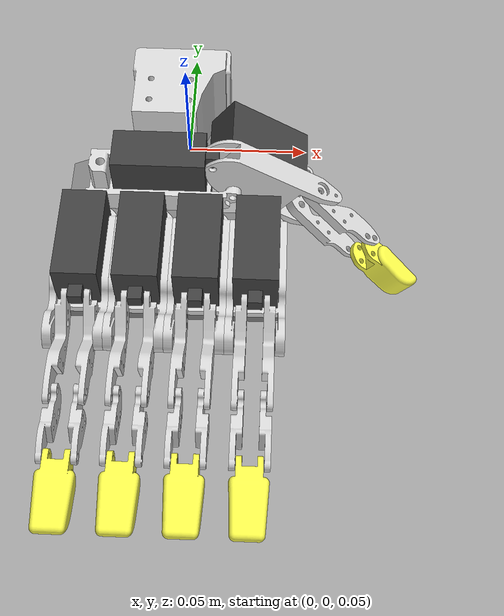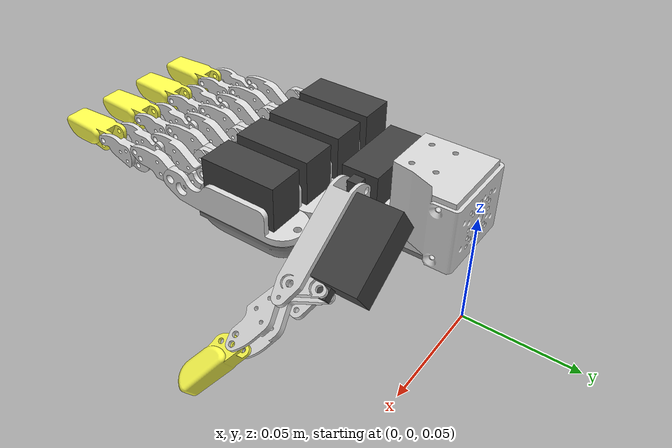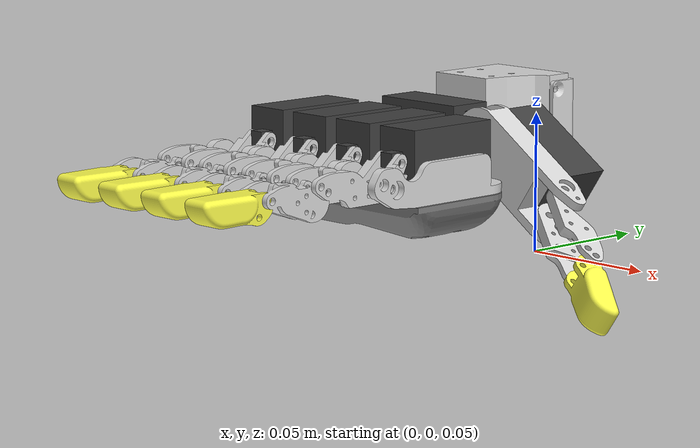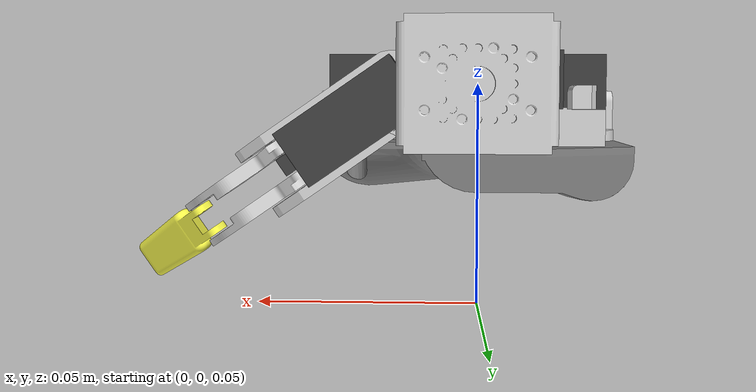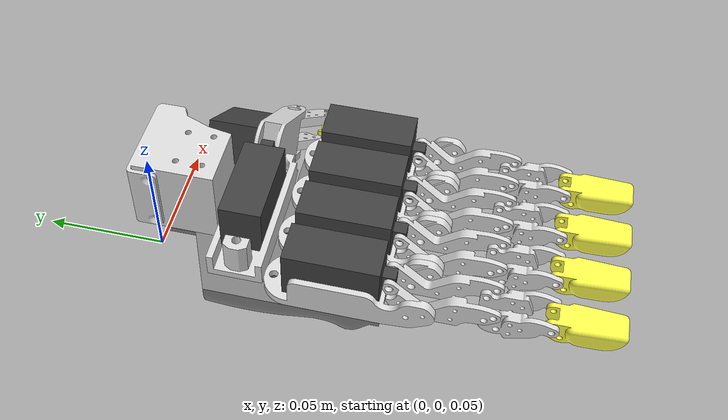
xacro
<?xml version="1.0"?>
<robot xmlns:xacro="http://www.ros.org/wiki/xacro" name="hj_hand_world">
      <!--
      Autor: Hyeonjun Park
      2019.07.17
      -->
      <link name="world" />

      <xacro:include filename="$(find hri_hand_control)/urdf/hj_hand.urdf.xacro" />
      <hj_hand parent="world">
            <origin xyz="0.0 0.0 0.1" rpy="${pi/2} ${pi} 0 "/>
      </hj_hand>

</robot>

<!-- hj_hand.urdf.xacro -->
<robot xmlns:xacro="http://www.ros.org/wiki/xacro" name="hj_hand">
<xacro:macro name="hj_hand" params="parent *origin">
      <!--
      Autor: Hyeonjun Park
      2019.07.17
      -->
      <xacro:include filename="$(find hri_hand_control)/urdf/hj_hand_transmission.xacro" />
      <xacro:include filename="$(find hri_hand_control)/urdf/hj_hand_gazebo.xacro" />

      <xacro:property name="motor_x" value="0.016" />
      <xacro:property name="motor_y" value="0.035" />
      <xacro:property name="motor_z" value="0.02" />
      <xacro:property name="pris_x" value="0.005" />
      <xacro:property name="pris_y" value="0.005" />
      <xacro:property name="pris_z" value="0.025" />

      <xacro:property name="knucle_mass" value="0.010" />
      <xacro:property name="MCP_mass" value="0.0125" />
      <xacro:property name="PIP_mass" value="0.0125" />
      <xacro:property name="DIP_mass" value="0.0025" />
      <xacro:property name="motor_mass" value="0.015" />

      <xacro:property name="motor_joint_x" value="0.0" />
      <xacro:property name="motor_joint_y" value="-0.0145" />
      <xacro:property name="motor_joint_z" value="0.006" />

      <xacro:property name="eef_offset_z" value="0.025725" />
      <xacro:property name="motor_max_upper" value="0.0103" /> <!--joint origin-->

<!--****************WRIST PLATE************************* -->
      <link name="wrist_plate">
            <visual>
                  <geometry>
                        <mesh filename="package://hri_hand_control/urdf/mesh/F03_AL_link_hand_wrist_part.stl" scale="0.001 0.001 0.001"/>
                  </geometry>
                  <origin xyz = "0.0 0.0 0.0" rpy = "1.57 0.0 0.0"/>
                  <material name="white">
                        <color rgba="0.85 0.85 0.85 1"/>
                  </material>
            </visual>
            <collision>
                  <geometry>
                        <mesh filename="package://hri_hand_control/urdf/mesh/F03_AL_link_hand_wrist_part.stl" scale="0.001 0.001 0.001"/>
                  </geometry>
                  <origin xyz = "0.0 0.0 0.0" rpy = "1.57 0.0 0.0"/>
            </collision>
      </link>
      <joint name="wrist_plate_joint" type="fixed">
            <xacro:insert_block name="origin" />
            <parent link="${parent}"/>
            <child link="wrist_plate"/>
            <limit lower="0.0" upper="0.0" effort="0.0" velocity="0.0"/>
      </joint>

      <!--**************** hand palm*************************-->
      <xacro:property name="hand_palm_x" value="0.0" />
      <xacro:property name="hand_palm_y" value="0.0162" />
      <xacro:property name="hand_palm_z" value="0.030" />
      <xacro:property name="hand_palm_r" value="3.14" />
      <xacro:property name="hand_palm_p" value="4.71" />
      <xacro:property name="hand_palm_yaw" value="0.0" />

      <link name="hand_palm">
            <visual>
                  <geometry>
                  <mesh filename="package://hri_hand_control/urdf/mesh/F03_AL_palm.stl" scale="0.001 0.001 0.001"/>
                  </geometry>
                  <origin xyz = "${hand_palm_x} ${hand_palm_y} ${hand_palm_z}" rpy = "${hand_palm_r} ${hand_palm_p} ${hand_palm_yaw}"/>
                  <material name="lightgrey">
                  <color rgba="0.5 0.5 0.5 1.0"/>
                  </material>
            </visual>
            <collision>
                  <geometry>
                  <mesh filename="package://hri_hand_control/urdf/mesh/F03_AL_palm.stl" scale="0.001 0.001 0.001"/>
                  </geometry>
                  <origin xyz = "${hand_palm_x} ${hand_palm_y} ${hand_palm_z}" rpy = "${hand_palm_r} ${hand_palm_p} ${hand_palm_yaw}"/>
            </collision>
            <inertial>
                  <mass value="0.09"/>
                  <inertia ixx="1.0e-03" ixy="0.0" ixz="0.0"
               iyy="1.0e-03" iyz="0.0"
               izz="1.0e-03" />
            </inertial>
      </link>

      <joint name="hand_wrist_plate_to_hand_palm" type="fixed">
            <parent link="wrist_plate"/>
            <child link="hand_palm"/>
            <origin xyz="0 0 .026"/>
      </joint>
      <!--****************4 fingers*************************-->

      <xacro:property name="knuckle_4finger_x" value="-0.0313" /> <!--joint origin-->
      <xacro:property name="knuckle_4finger_y" value="0.0160" />
      <xacro:property name="knuckle_4finger_z" value="0.0295" />

      <xacro:property name="knuckle_roll" value="0.0" />        <!--link orientation -->
      <xacro:property name="knuckle_pitch" value="-1.57" />
      <xacro:property name="knuckle_yaw" value="-3.14" />

      <link name="knuckle_index">
      <visual>
            <geometry>
            <mesh filename="package://hri_hand_control/urdf/mesh/F03_Finger_base.stl" scale="0.001 0.001 0.001"/>
            </geometry>
            <origin xyz = "0.0 0.0 0.0" rpy = "${knuckle_roll} ${knuckle_pitch} ${knuckle_yaw}"/>
            <material name="white">
            </material>
      </visual>
      <collision>
            <geometry>
            <mesh filename="package://hri_hand_control/urdf/mesh/F03_Finger_base.stl" scale="0.001 0.001 0.001"/>
            </geometry>
            <origin xyz = "0.0 0.0 0.0" rpy = "${knuckle_roll} ${knuckle_pitch} ${knuckle_yaw}"/>
      </collision>
      <inertial>
            <mass value="${knucle_mass}"/>
            <inertia ixx="1.0e-03" ixy="0.0" ixz="0.0"
               iyy="1.0e-03" iyz="0.0"
               izz="1.0e-03" />
      </inertial>
      </link>
      <joint name="knuckle_index_joint" type="fixed">
      <parent link="hand_palm"/>
      <child link="knuckle_index"/>
      <origin xyz ="${knuckle_4finger_x}
                        ${knuckle_4finger_y}
                        ${knuckle_4finger_z}"/>
      </joint>

      <link name="knuckle_middle">
      <visual>
            <geometry>
            <mesh filename="package://hri_hand_control/urdf/mesh/F03_Finger_base.stl" scale="0.001 0.001 0.001"/>
            </geometry>
            <origin xyz = "0.0 0.0 0.0" rpy = "${knuckle_roll} ${knuckle_pitch} ${knuckle_yaw}"/>
            <material name="white">
            </material>
      </visual>
      <collision>
            <geometry>
            <mesh filename="package://hri_hand_control/urdf/mesh/F03_Finger_base.stl" scale="0.001 0.001 0.001"/>
            </geometry>
            <origin xyz = "0.0 0.0 0.0" rpy = "${knuckle_roll} ${knuckle_pitch} ${knuckle_yaw}"/>
      </collision>
      <inertial>
            <mass value="${knucle_mass}"/>
            <inertia ixx="1.0e-03" ixy="0.0" ixz="0.0"
               iyy="1.0e-03" iyz="0.0"
               izz="1.0e-03" />

      </inertial>
      </link>
            <joint name="knuckle_middle_joint" type="fixed">
            <parent link="hand_palm"/>
            <child link="knuckle_middle"/>
            <origin xyz ="${knuckle_4finger_x + 0.0210}
                              ${knuckle_4finger_y}
                              ${knuckle_4finger_z}"/>
      </joint>

      <link name="knuckle_ring">
            <visual>
                  <geometry>
                  <mesh filename="package://hri_hand_control/urdf/mesh/F03_Finger_base.stl" scale="0.001 0.001 0.001"/>
                  </geometry>
                  <origin xyz = "0.0 0.0 0.0" rpy = "${knuckle_roll} ${knuckle_pitch} ${knuckle_yaw}"/>
                  <material name="white">
                  </material>
            </visual>
            <collision>
                  <geometry>
                  <mesh filename="package://hri_hand_control/urdf/mesh/F03_Finger_base.stl" scale="0.001 0.001 0.001"/>
                  </geometry>
                  <origin xyz = "0.0 0.0 0.0" rpy = "${knuckle_roll} ${knuckle_pitch} ${knuckle_yaw}"/>
            </collision>
            <inertial>
                  <mass value="${knucle_mass}"/>
                  <inertia ixx="1.0e-03" ixy="0.0" ixz="0.0"
               iyy="1.0e-03" iyz="0.0"
               izz="1.0e-03" />

            </inertial>
      </link>
            <joint name="knuckle_ring_joint" type="fixed">
                  <parent link="hand_palm"/>
                  <child link="knuckle_ring"/>
                  <origin xyz ="${knuckle_4finger_x + 0.0420}
                                    ${knuckle_4finger_y}
                                    ${knuckle_4finger_z}"/>
            </joint>

      <link name="knuckle_little">
            <visual>
                  <geometry>
                  <mesh filename="package://hri_hand_control/urdf/mesh/F03_Finger_base.stl" scale="0.001 0.001 0.001"/>
                  </geometry>
                  <origin xyz = "0.0 0.0 0.0" rpy = "${knuckle_roll} ${knuckle_pitch} ${knuckle_yaw}"/>
                  <material name="white">
                  </material>
            </visual>
            <collision>
                  <geometry>
                  <mesh filename="package://hri_hand_control/urdf/mesh/F03_Finger_base.stl" scale="0.001 0.001 0.001"/>
                  </geometry>
                  <origin xyz = "0.0 0.0 0.0" rpy = "${knuckle_roll} ${knuckle_pitch} ${knuckle_yaw}"/>
            </collision>
            <inertial>
                  <mass value="${knucle_mass}"/>
                  <inertia ixx="1.0e-03" ixy="0.0" ixz="0.0"
               iyy="1.0e-03" iyz="0.0"
               izz="1.0e-03" />

            </inertial>
      </link>
      <joint name="knuckle_little_joint" type="fixed">
            <parent link="hand_palm"/>
            <child link="knuckle_little"/>
            <origin xyz ="${knuckle_4finger_x + 0.0630}
                              ${knuckle_4finger_y}
                              ${knuckle_4finger_z}"/>
      </joint>

      <!--****************Thumb part*************************-->
      <xacro:property name="knuckle_thumb_x" value="0.0345" /> <!--joint origin-->
      <xacro:property name="knuckle_thumb_y" value="0.0162" />
      <xacro:property name="knuckle_thumb_z" value="0.0186" />

      <xacro:property name="thumb_joint_joint_x" value="-0.0558" /> <!--joint origin-->
      <xacro:property name="thumb_joint_joint_y" value="-0.00675" />
      <xacro:property name="thumb_joint_joint_z" value="-0.0" />

      <xacro:property name="thumb_x" value="0.00" /> <!--link offset-->
      <xacro:property name="thumb_y" value="0" />
      <xacro:property name="thumb_z" value="-0.005" />
      <xacro:property name="thumb_roll" value="0.0" /> <!--joint offset-->
      <xacro:property name="thumb_pitch" value="0" />
      <xacro:property name="thumb_yaw" value="3.14" />

      <xacro:property name="thumb_link_MCP_x" value="0.00955" /> <!--link offset-->
      <xacro:property name="thumb_link_MCP_y" value="0.0" />
      <xacro:property name="thumb_link_MCP_z" value="0.00415" />
      <xacro:property name="thumb_link_DIP_x" value="0.00255" /> <!--link offset-->
      <xacro:property name="thumb_link_DIP_y" value="0.00" />
      <xacro:property name="thumb_link_DIP_z" value="0.00726" />

      <xacro:property name="thumb_finger_roll" value="-1.57" /> <!--link offset-->
      <xacro:property name="thumb_finger_pitch" value="0" />
      <xacro:property name="thumb_finger_yaw" value="3.14" />

      <xacro:property name="thumb_joint_MCP_x" value="-0.031" /> <!--joint origin-->
      <xacro:property name="thumb_joint_MCP_y" value="-0.0055" />
      <xacro:property name="thumb_joint_MCP_z" value="-0.000" />
      <xacro:property name="thumb_joint_DIP_x" value="-0.0298" /> <!--joint origin-->
      <xacro:property name="thumb_joint_DIP_y" value="-0.00" />
      <xacro:property name="thumb_joint_DIP_z" value="-0.0042" />

      <link name="knuckle_thumb">
            <visual>
                  <geometry>
                  <mesh filename="package://hri_hand_control/urdf/mesh/F03_Thumb_base.stl" scale="0.001 0.001 0.001"/>
                  </geometry>
                  <origin xyz = "0.0 0.0 0.0" rpy = "${knuckle_roll} 0.0 ${knuckle_yaw}"/>
                  <material name="white">
                  </material>
            </visual>
            <collision>
                  <geometry>
                  <mesh filename="package://hri_hand_control/urdf/mesh/F03_Thumb_base.stl" scale="0.001 0.001 0.001"/>
                  </geometry>
                  <origin xyz = "0.0 0.0 0.0" rpy = "${knuckle_roll} 0.0 ${knuckle_yaw}"/>
            </collision>
            <inertial>
                  <mass value="${knucle_mass}"/>
                  <inertia ixx="1.0e-03" ixy="0.0" ixz="0.0"
               iyy="1.0e-03" iyz="0.0"
               izz="1.0e-03" />

            </inertial>
      </link>
      <joint name="knuckle_thumb_joint" type="fixed">
            <parent link="hand_palm"/>
            <child link="knuckle_thumb"/>
            <origin xyz = "${knuckle_thumb_x}
                           ${knuckle_thumb_y}
                           ${knuckle_thumb_z}"/>
      </joint>

      <!-- Thumb finger -->
      <link name="thumb_joint">
      <visual>
            <geometry>
                  <mesh filename="package://hri_hand_control/urdf/mesh/F03_Thumb_joint.stl" scale="0.001 0.001 0.001"/>
            </geometry>
                  <origin xyz = "${thumb_x} ${thumb_y} ${thumb_z}" rpy = "${thumb_roll} ${thumb_pitch} ${thumb_yaw}"/>
            <material name="white">
            </material>
      </visual>
      <collision>
            <geometry>
                  <mesh filename="package://hri_hand_control/urdf/mesh/F03_Thumb_joint.stl" scale="0.001 0.001 0.001"/>
            </geometry>
            <origin xyz = "${thumb_x} ${thumb_y} ${thumb_z}" rpy = "${thumb_roll} ${thumb_pitch} ${thumb_yaw}"/>
      </collision>
      <inertial>
            <mass value="${motor_mass}"/>
            <inertia ixx="1.0e-03" ixy="0.0" ixz="0.0"
               iyy="1.0e-03" iyz="0.0"
               izz="1.0e-03" />

      </inertial>
      </link>

      <joint name="thumb_jo_joint" type="revolute">
            <axis xyz="0 0 -1"/>    <!--z axis rotate -->
            <limit effort="1000.0" lower="0.0" upper="1.8" velocity="0.5"/>
            <parent link="knuckle_thumb"/>
            <child link="thumb_joint"/>
            <origin xyz="${thumb_joint_joint_x}
                         ${thumb_joint_joint_y}
                         ${thumb_joint_joint_z}" rpy = "0.0 0.0 -0.6021" />
            <joint_properties damping="1.0" friction="0.0"/>
            <mimic joint="pris_thumb_jo_joint" multiplier="100.00" offset="0.0" />
      </joint>

      <link name="thumb_MCP">
      <visual>
            <geometry>
                  <mesh filename="package://hri_hand_control/urdf/mesh/F03_AL_link_MCP.stl" scale="0.001 0.001 0.001"/>
            </geometry>
                  <origin xyz = "${thumb_link_MCP_x} ${thumb_link_MCP_y} ${thumb_link_MCP_z}"
                          rpy = "${thumb_finger_roll} ${thumb_finger_pitch} ${thumb_finger_yaw}"/>
            <material name="white">
            </material>
      </visual>
      <collision>
            <geometry>
            <mesh filename="package://hri_hand_control/urdf/mesh/F03_AL_link_MCP.stl" scale="0.001 0.001 0.001"/>
            </geometry>
            <origin xyz = "${thumb_link_MCP_x} ${thumb_link_MCP_y} ${thumb_link_MCP_z}" rpy = "${thumb_finger_roll} ${thumb_finger_pitch} ${thumb_finger_yaw}"/>
      </collision>
      <inertial>
            <mass value="${MCP_mass}"/>
            <inertia ixx="1.0e-03" ixy="0.0" ixz="0.0"
               iyy="1.0e-03" iyz="0.0"
               izz="1.0e-03" />

      </inertial>
      </link>

      <joint name="thumb_MCP_joint" type="revolute">
            <axis xyz="0 1 0"/>
            <limit effort="1000.0" lower="0.0" upper="1.0" velocity="0.5"/>
            <parent link="thumb_joint"/>
            <child link="thumb_MCP"/>
            <origin xyz="${thumb_joint_MCP_x}
                         ${thumb_joint_MCP_y}
                         ${thumb_joint_MCP_z}" rpy = "0.0 0.4538 0.0"/>

            <joint_properties damping="1.0" friction="0.0"/>
            <mimic joint="pris_thumb_DIP_joint" multiplier="100.00" offset="0.0" />
      </joint>

      <link name="thumb_DIP">
      <visual>
            <geometry>
                  <mesh filename="package://hri_hand_control/urdf/mesh/F03_AL_link_DIP.stl" scale="0.001 0.001 0.001"/>
            </geometry>
                  <origin xyz = "${thumb_link_DIP_x} ${thumb_link_DIP_y} ${thumb_link_DIP_z}" rpy = "${thumb_finger_roll} ${thumb_finger_pitch} ${thumb_finger_yaw}"/>
            <material name="lightyellow">
            <color rgba="1.0 1.0 0.3 1.0"/>
            </material>
      </visual>
      <collision>
            <geometry>
            <mesh filename="package://hri_hand_control/urdf/mesh/F03_AL_link_DIP.stl" scale="0.001 0.001 0.001"/>
            </geometry>
            <origin xyz = "${thumb_link_DIP_x} ${thumb_link_DIP_y} ${thumb_link_DIP_z}" rpy = "${thumb_finger_roll} ${thumb_finger_pitch} ${thumb_finger_yaw}"/>
      </collision>
      <inertial>
            <mass value="${DIP_mass}"/>
            <inertia ixx="1.0e-03" ixy="0.0" ixz="0.0"
               iyy="1.0e-03" iyz="0.0"
               izz="1.0e-03" />

      </inertial>
      </link>

      <joint name="thumb_DIP_joint" type="revolute">
            <axis xyz="0 1 0"/>
            <limit effort="1000.0" lower="0.0" upper="0.8" velocity="0.5"/>
            <parent link="thumb_MCP"/>
            <child link="thumb_DIP"/>
            <origin xyz="${thumb_joint_DIP_x}
                         ${thumb_joint_DIP_y}
                         ${thumb_joint_DIP_z}" rpy = "0.0 0.0 0.0"/>

            <joint_properties damping="1.0" friction="0.0"/>
            <mimic joint="pris_thumb_DIP_joint" multiplier="100.00" offset="0.0" />
      </joint>

      <link name="ee_thumb_link">
            <collision>
                  <geometry>
                        <box size="0.0001 0.0001 0.0001"/>
                  </geometry>
                  <origin xyz="0.0 0.0 0.0" rpy="0.0 0.0 0.0"/>
            </collision>
      </link>

      <joint name="ee_th_joint" type="fixed">
            <parent link="thumb_DIP"/>
            <child link="ee_thumb_link"/>
            <origin xyz="${-eef_offset_z} 0.0 0.0 " rpy="0.0 0.0 0.0"/>
      </joint>

      <!-- Thumb finger end -->

      <!-- Thumb motor -->

      <xacro:property name="motor_th_joint_x" value="-0.008" />  <!-- joint offset -->
      <xacro:property name="motor_th_joint_y" value="-0.015" />
      <xacro:property name="motor_th_joint_z" value="-0.000" />

      <xacro:property name="motor_dip_joint_x" value="0.0125" />  <!-- joint offset -->
      <xacro:property name="motor_dip_joint_y" value="-0.0055" />
      <xacro:property name="motor_dip_joint_z" value="-0.015" />

      <link name="motor_thumb_jo">
            <visual>
                  <geometry>
                  <box size="${motor_x} ${motor_y} ${motor_z}"/>
                  </geometry>
                  <origin xyz="0 .02 0"/>
                  <material name="black">
                  <color rgba="0.25 0.25 0.25 1"/>
                  </material>
            </visual>
            <inertial>
                  <mass value="${motor_mass}"/>
                  <inertia ixx="1.0e-03" ixy="0.0" ixz="0.0"
               iyy="1.0e-03" iyz="0.0"
               izz="1.0e-03" />

            </inertial>
      </link>

      <joint name="motor_thumb_jo_joint" type="fixed">
            <axis xyz="1 0 0"/>
            <parent link="knuckle_thumb"/>
            <child link="motor_thumb_jo"/>
            <origin xyz="${motor_th_joint_x} ${motor_th_joint_y} ${motor_th_joint_z}" rpy = "1.57 -1.57 0"/>
      </joint>

      <link name="pris_thumb_jo">
            <visual>
                  <geometry>
                  <box size="${pris_x} ${pris_y} ${pris_z}"/>
                   </geometry>
                  <origin xyz="0 0 0"/>
                  <material name="black">
                  </material>
            </visual>
            <inertial>
                  <mass value="0.001"/>
                  <inertia ixx="1.0e-03" ixy="0.0" ixz="0.0"
               iyy="1.0e-03" iyz="0.0"
               izz="1.0e-03" />
            </inertial>
      </link>

      <joint name="pris_thumb_jo_joint" type="prismatic">
            <axis xyz="0 0 -1"/>
            <limit effort="1000.0" lower="0.0" upper="${motor_max_upper}" velocity="0.1"/>
            <parent link="motor_thumb_jo"/>
            <child link="pris_thumb_jo"/>
            <!--origin xyz="0 .03 0" rpy = "1.57 0 0"/-->
            <origin xyz="0.0 ${motor_joint_y + 0.0445} ${motor_joint_z -0.0007}" rpy = "1.57 0 0"/>
      </joint>

      <link name="motor_thumb_DIP">
            <visual>
                  <geometry>
                  <box size="${motor_x} ${motor_y} ${motor_z}"/>
                  </geometry>
                  <origin xyz="0 .02 0"/>
                  <material name="black">
                  <color rgba="0.25 0.25 0.25 1"/>
                  </material>
            </visual>
            <inertial>
                  <mass value="${DIP_mass}"/>
                  <inertia ixx="1.0e-03" ixy="0.0" ixz="0.0"
               iyy="1.0e-03" iyz="0.0"
               izz="1.0e-03" />
            </inertial>
      </link>

      <joint name="motor_thumb_DIP_joint" type="fixed">
            <axis xyz="1 0 0"/>
            <parent link="thumb_joint"/>
            <child link="motor_thumb_DIP"/>
            <origin xyz="${motor_dip_joint_x} ${motor_dip_joint_y} ${motor_dip_joint_z}"
                    rpy = "3.14 3.14 -1.57"/>
      </joint>

      <link name="pris_thumb_DIP">
            <visual>
                  <geometry>
                  <box size="${pris_x} ${pris_y} ${pris_z}"/>
                   </geometry>
                  <origin xyz="0 0 0"/>
                  <material name="black">
                  </material>
            </visual>
            <inertial>
                  <mass value="0.001"/>
                  <inertia ixx="1.0e-03" ixy="0.0" ixz="0.0"
               iyy="1.0e-03" iyz="0.0"
               izz="1.0e-03" />

            </inertial>
      </link>

      <joint name="pris_thumb_DIP_joint" type="prismatic">
            <axis xyz="0 0 -1"/>
            <limit effort="1000.0" lower="0.0" upper="${motor_max_upper}" velocity="0.1"/>
            <parent link="motor_thumb_DIP"/>
            <child link="pris_thumb_DIP"/>
            <!--origin xyz="0 .03 0" rpy = "1.57 0 0"/-->
            <origin xyz="0.0 ${motor_joint_y + 0.0445} ${motor_joint_z -0.0007}" rpy = "1.57 0 0"/>
      </joint>

      <!-- Thumb motor end -->

      <!--****************FINGERS*************************-->
      <xacro:property name="MCP_joint_x" value="-0.0002" />
      <xacro:property name="MCP_joint_y" value="-0.00677" />
      <xacro:property name="MCP_joint_z" value="0.0538" />
      <xacro:property name="PIP_joint_x" value="-0.0" />
      <xacro:property name="PIP_joint_y" value="-0.00208" />
      <xacro:property name="PIP_joint_z" value="0.02677" />
      <xacro:property name="DIP_joint_x" value="-0.0" />
      <xacro:property name="DIP_joint_y" value="-0.0" />
      <xacro:property name="DIP_joint_z" value="0.0233" />

      <xacro:property name="MCP_link_x" value="0.0"/>
      <xacro:property name="MCP_link_y" value="0.00415" />
      <xacro:property name="MCP_link_z" value="-0.00955" />
      <xacro:property name="PIP_link_x" value="-0.0002"/>
      <xacro:property name="PIP_link_y" value="0.0093" />
      <xacro:property name="PIP_link_z" value="-0.00242" />
      <xacro:property name="DIP_link_x" value="0.0"/>
      <xacro:property name="DIP_link_y" value="0.0075" />
      <xacro:property name="DIP_link_z" value="-0.0025" />

      <xacro:property name="finger_roll" value="0.0" />
      <xacro:property name="finger_pitch" value="-1.57" />
      <xacro:property name="finger_yaw" value="3.14" />
      <!-- index -->
      <link name="index_MCP">
      <visual>
            <geometry>
                  <mesh filename="package://hri_hand_control/urdf/mesh/F03_AL_link_MCP.stl" scale="0.001 0.001 0.001"/>
            </geometry>
            <origin xyz = "${MCP_link_x} ${MCP_link_y} ${MCP_link_z}" rpy = "${finger_roll} ${finger_pitch} ${finger_yaw}"/>
            <material name="white">
            </material>
      </visual>
      <collision>
            <geometry>
            <mesh filename="package://hri_hand_control/urdf/mesh/F03_AL_link_MCP.stl" scale="0.001 0.001 0.001"/>
            </geometry>
            <origin xyz = "${MCP_link_x} ${MCP_link_y} ${MCP_link_z}" rpy = "${finger_roll} ${finger_pitch} ${finger_yaw}"/>
      </collision>
      <inertial>
            <mass value="${MCP_mass}"/>
            <inertia ixx="1.0e-03" ixy="0.0" ixz="0.0"
               iyy="1.0e-03" iyz="0.0"
               izz="1.0e-03" />
      </inertial>
      </link>

      <joint name="index_MCP_joint" type="revolute">
            <axis xyz="-1 0 0"/>
            <limit effort="1000.0" lower="0.0" upper="1.3" velocity="0.5"/>
            <parent link="knuckle_index"/>
            <child link="index_MCP"/>
            <origin xyz="${MCP_joint_x}
                         ${MCP_joint_y}
                         ${MCP_joint_z}"/>
            <joint_properties damping="1.0" friction="0.0"/>
            <mimic joint="pris_index_joint" multiplier="100.00" offset="0.0" />
      </joint>

      <link name="index_PIP">
      <visual>
            <geometry>
                  <mesh filename="package://hri_hand_control/urdf/mesh/F03_AL_link_PIP.stl" scale="0.001 0.001 0.001"/>
            </geometry>
                  <origin xyz = "${PIP_link_x}
                                 ${PIP_link_y}
                                 ${PIP_link_z}"
                                 rpy = "${finger_roll} ${finger_pitch} ${finger_yaw}"/>
            <material name="white">
            </material>
      </visual>
      <collision>
            <geometry>
            <mesh filename="package://hri_hand_control/urdf/mesh/F03_AL_link_PIP.stl" scale="0.001 0.001 0.001"/>
            </geometry>
            <origin xyz = "${PIP_link_x} ${PIP_link_y} ${PIP_link_z}" rpy = "${finger_roll} ${finger_pitch} ${finger_yaw}"/>
      </collision>
      <inertial>
            <mass value="${PIP_mass}"/>
            <inertia ixx="1.0e-03" ixy="0.0" ixz="0.0"
               iyy="1.0e-03" iyz="0.0"
               izz="1.0e-03" />
      </inertial>
      </link>

      <joint name="index_PIP_joint" type="revolute">
            <axis xyz="-1 0 0"/>
            <limit effort="1000.0" lower="0.0" upper="1.0" velocity="0.5"/>
            <parent link="index_MCP"/>
            <child link="index_PIP"/>
            <origin xyz="${PIP_joint_x}
                         ${PIP_joint_y}
                         ${PIP_joint_z}"/>
            <joint_properties damping="1.0" friction="0.0"/>
            <mimic joint="pris_index_joint" multiplier="100.00" offset="0.0" />
      </joint>

      <link name="index_DIP">
      <visual>
            <geometry>
                  <mesh filename="package://hri_hand_control/urdf/mesh/F03_AL_link_DIP.stl" scale="0.001 0.001 0.001"/>
            </geometry>
                  <origin xyz = "${DIP_link_x}
                                 ${DIP_link_y}
                                 ${DIP_link_z}"
                                 rpy = "${finger_roll} ${finger_pitch} ${finger_yaw}"/>
            <material name="lightyellow">
            <color rgba="1.0 1.0 0.3 1.0"/>
            </material>
      </visual>
      <collision>
            <geometry>
            <mesh filename="package://hri_hand_control/urdf/mesh/F03_AL_link_DIP.stl" scale="0.001 0.001 0.001"/>
            </geometry>
            <origin xyz = "${DIP_link_x} ${DIP_link_y} ${DIP_link_z}" rpy = "${finger_roll} ${finger_pitch} ${finger_yaw}"/>
      </collision>
      <inertial>
            <mass value="${DIP_mass}"/>
            <inertia ixx="1.0e-03" ixy="0.0" ixz="0.0"
               iyy="1.0e-03" iyz="0.0"
               izz="1.0e-03" />
      </inertial>
      </link>

      <joint name="index_DIP_joint" type="revolute">
            <axis xyz="-1 0 0"/>
            <limit effort="1000.0" lower="0.0" upper="1.0" velocity="0.5"/>
            <parent link="index_PIP"/>
            <child link="index_DIP"/>
            <origin xyz="${DIP_joint_x}
                         ${DIP_joint_y}
                         ${DIP_joint_z}"/>
            <joint_properties damping="1.0" friction="0.0"/>
            <mimic joint="pris_index_joint" multiplier="100.00" offset="0.0" />
      </joint>

      <link name="ee_index_link">
            <collision>
                  <geometry>
                        <box size="0.0001 0.0001 0.0001"/>
                  </geometry>
                  <origin xyz="0.0 0.0 0.0" rpy="0.0 0.0 0.0"/>
            </collision>
      </link>

      <joint name="ee_in_joint" type="fixed">
            <parent link="index_DIP"/>
            <child link="ee_index_link"/>
            <origin xyz="0.0 0.0 ${eef_offset_z}" rpy="0.0 0.0 0.0"/>
      </joint>
      <!-- index END-->

      <!-- middle -->
      <link name="middle_MCP">
      <visual>
            <geometry>
                  <mesh filename="package://hri_hand_control/urdf/mesh/F03_AL_link_MCP.stl" scale="0.001 0.001 0.001"/>
            </geometry>
                  <origin xyz = "${MCP_link_x} ${MCP_link_y} ${MCP_link_z}" rpy = "${finger_roll} ${finger_pitch} ${finger_yaw}"/>
            <material name="white">
            </material>
      </visual>
      <collision>
            <geometry>
            <mesh filename="package://hri_hand_control/urdf/mesh/F03_AL_link_MCP.stl" scale="0.001 0.001 0.001"/>
            </geometry>
            <origin xyz = "${MCP_link_x} ${MCP_link_y} ${MCP_link_z}" rpy = "${finger_roll} ${finger_pitch} ${finger_yaw}"/>
      </collision>
      <inertial>
            <mass value="${MCP_mass}"/>
            <inertia ixx="1.0e-03" ixy="0.0" ixz="0.0"
               iyy="1.0e-03" iyz="0.0"
               izz="1.0e-03" />
      </inertial>
      </link>

      <joint name="middle_MCP_joint" type="revolute">
            <axis xyz="-1 0 0"/>
            <limit effort="1000.0" lower="0.0" upper="1.3" velocity="0.5"/>
            <parent link="knuckle_middle"/>
            <child link="middle_MCP"/>
            <origin xyz="${MCP_joint_x}
                         ${MCP_joint_y}
                         ${MCP_joint_z}"/>
            <joint_properties damping="1.0" friction="0.0"/>
            <mimic joint="pris_middle_joint" multiplier="100.00" offset="0.0" />
      </joint>

      <link name="middle_PIP">
      <visual>
            <geometry>
                  <mesh filename="package://hri_hand_control/urdf/mesh/F03_AL_link_PIP.stl" scale="0.001 0.001 0.001"/>
            </geometry>
                  <origin xyz = "${PIP_link_x}
                                 ${PIP_link_y}
                                 ${PIP_link_z}"
                                 rpy = "${finger_roll} ${finger_pitch} ${finger_yaw}"/>
            <material name="white">
            </material>
      </visual>
      <collision>
            <geometry>
            <mesh filename="package://hri_hand_control/urdf/mesh/F03_AL_link_PIP.stl" scale="0.001 0.001 0.001"/>
            </geometry>
            <origin xyz = "${PIP_link_x} ${PIP_link_y} ${PIP_link_z}" rpy = "${finger_roll} ${finger_pitch} ${finger_yaw}"/>
      </collision>
      <inertial>
            <mass value="${PIP_mass}"/>
            <inertia ixx="1.0e-03" ixy="0.0" ixz="0.0"
               iyy="1.0e-03" iyz="0.0"
               izz="1.0e-03" />
      </inertial>
      </link>

      <joint name="middle_PIP_joint" type="revolute">
            <axis xyz="-1 0 0"/>
            <limit effort="1000.0" lower="0.0" upper="1.0" velocity="0.5"/>
            <parent link="middle_MCP"/>
            <child link="middle_PIP"/>
            <origin xyz="${PIP_joint_x}
                         ${PIP_joint_y}
                         ${PIP_joint_z}"/>
            <joint_properties damping="1.0" friction="0.0"/>
            <mimic joint="pris_middle_joint" multiplier="100.00" offset="0.0" />
      </joint>

      <link name="middle_DIP">
      <visual>
            <geometry>
                  <mesh filename="package://hri_hand_control/urdf/mesh/F03_AL_link_DIP.stl" scale="0.001 0.001 0.001"/>
            </geometry>
                  <origin xyz = "${DIP_link_x}
                                 ${DIP_link_y}
                                 ${DIP_link_z}"
                                 rpy = "${finger_roll} ${finger_pitch} ${finger_yaw}"/>
            <material name="lightyellow">
            </material>
      </visual>
      <collision>
            <geometry>
            <mesh filename="package://hri_hand_control/urdf/mesh/F03_AL_link_DIP.stl" scale="0.001 0.001 0.001"/>
            </geometry>
            <origin xyz = "${DIP_link_x} ${DIP_link_y} ${DIP_link_z}" rpy = "${finger_roll} ${finger_pitch} ${finger_yaw}"/>
      </collision>
      <inertial>
            <mass value="${DIP_mass}"/>
            <inertia ixx="1.0e-03" ixy="0.0" ixz="0.0"
               iyy="1.0e-03" iyz="0.0"
               izz="1.0e-03" />
      </inertial>
      </link>

      <joint name="middle_DIP_joint" type="revolute">
            <axis xyz="-1 0 0"/>
            <limit effort="1000.0" lower="0.0" upper="1.0" velocity="0.5"/>
            <parent link="middle_PIP"/>
            <child link="middle_DIP"/>
            <origin xyz="${DIP_joint_x}
                         ${DIP_joint_y}
                         ${DIP_joint_z}"/>
            <joint_properties damping="1.0" friction="0.0"/>
            <mimic joint="pris_middle_joint" multiplier="100.00" offset="0.0" />
      </joint>

      <link name="ee_middle_link">
            <collision>
                  <geometry>
                        <box size="0.0001 0.0001 0.0001"/>
                  </geometry>
                  <origin xyz="0.0 0.0 0.0" rpy="0.0 0.0 0.0"/>
            </collision>
      </link>

      <joint name="ee_mi_joint" type="fixed">
            <parent link="middle_DIP"/>
            <child link="ee_middle_link"/>
            <origin xyz="0.0 0.0 ${eef_offset_z}" rpy="0.0 0.0 0.0"/>
      </joint>

      <!-- middle END-->

      <!-- ring -->
      <link name="ring_MCP">
      <visual>
            <geometry>
                  <mesh filename="package://hri_hand_control/urdf/mesh/F03_AL_link_MCP.stl" scale="0.001 0.001 0.001"/>
            </geometry>
                  <origin xyz = "${MCP_link_x} ${MCP_link_y} ${MCP_link_z}" rpy = "${finger_roll} ${finger_pitch} ${finger_yaw}"/>
            <material name="white">
            </material>
      </visual>
      <collision>
            <geometry>
            <mesh filename="package://hri_hand_control/urdf/mesh/F03_AL_link_MCP.stl" scale="0.001 0.001 0.001"/>
            </geometry>
            <origin xyz = "${MCP_link_x} ${MCP_link_y} ${MCP_link_z}" rpy = "${finger_roll} ${finger_pitch} ${finger_yaw}"/>
      </collision>
      <inertial>
            <mass value="${MCP_mass}"/>
            <inertia ixx="1.0e-03" ixy="0.0" ixz="0.0"
               iyy="1.0e-03" iyz="0.0"
               izz="1.0e-03" />
      </inertial>
      </link>

      <joint name="ring_MCP_joint" type="revolute">
            <axis xyz="-1 0 0"/>
            <limit effort="1000.0" lower="0.0" upper="1.3" velocity="0.5"/>
            <parent link="knuckle_ring"/>
            <child link="ring_MCP"/>
            <origin xyz="${MCP_joint_x}
                         ${MCP_joint_y}
                         ${MCP_joint_z}"/>
            <joint_properties damping="1.0" friction="0.0"/>
            <mimic joint="pris_ring_joint" multiplier="100.00" offset="0.0" />
      </joint>

      <link name="ring_PIP">
      <visual>
            <geometry>
                  <mesh filename="package://hri_hand_control/urdf/mesh/F03_AL_link_PIP.stl" scale="0.001 0.001 0.001"/>
            </geometry>
                  <origin xyz = "${PIP_link_x}
                                 ${PIP_link_y}
                                 ${PIP_link_z}"
                                 rpy = "${finger_roll} ${finger_pitch} ${finger_yaw}"/>
            <material name="white">
            </material>
      </visual>
      <collision>
            <geometry>
            <mesh filename="package://hri_hand_control/urdf/mesh/F03_AL_link_PIP.stl" scale="0.001 0.001 0.001"/>
            </geometry>
            <origin xyz = "${PIP_link_x} ${PIP_link_y} ${PIP_link_z}" rpy = "${finger_roll} ${finger_pitch} ${finger_yaw}"/>
      </collision>
      <inertial>
            <mass value="${PIP_mass}"/>
            <inertia ixx="1.0e-03" ixy="0.0" ixz="0.0"
               iyy="1.0e-03" iyz="0.0"
               izz="1.0e-03" />
      </inertial>
      </link>

      <joint name="ring_PIP_joint" type="revolute">
            <axis xyz="-1 0 0"/>
            <limit effort="1000.0" lower="0.0" upper="1.0" velocity="0.5"/>
            <parent link="ring_MCP"/>
            <child link="ring_PIP"/>
            <origin xyz="${PIP_joint_x}
                         ${PIP_joint_y}
                         ${PIP_joint_z}"/>
            <joint_properties damping="1.0" friction="0.0"/>
            <mimic joint="pris_ring_joint" multiplier="100.00" offset="0.0" />
      </joint>

      <link name="ring_DIP">
      <visual>
            <geometry>
                  <mesh filename="package://hri_hand_control/urdf/mesh/F03_AL_link_DIP.stl" scale="0.001 0.001 0.001"/>
            </geometry>
                  <origin xyz = "${DIP_link_x}
                                 ${DIP_link_y}
                                 ${DIP_link_z}"
                                 rpy = "${finger_roll} ${finger_pitch} ${finger_yaw}"/>
            <material name="lightyellow">
            </material>
      </visual>
      <collision>
            <geometry>
            <mesh filename="package://hri_hand_control/urdf/mesh/F03_AL_link_DIP.stl" scale="0.001 0.001 0.001"/>
            </geometry>
            <origin xyz = "${DIP_link_x} ${DIP_link_y} ${DIP_link_z}" rpy = "${finger_roll} ${finger_pitch} ${finger_yaw}"/>
      </collision>
      <inertial>
            <mass value="${DIP_mass}"/>
            <inertia ixx="1.0e-03" ixy="0.0" ixz="0.0"
               iyy="1.0e-03" iyz="0.0"
               izz="1.0e-03" />
      </inertial>
      </link>

      <joint name="ring_DIP_joint" type="revolute">
            <axis xyz="-1 0 0"/>
            <limit effort="1000.0" lower="0.0" upper="1.0" velocity="0.5"/>
            <parent link="ring_PIP"/>
            <child link="ring_DIP"/>
            <origin xyz="${DIP_joint_x}
                         ${DIP_joint_y}
                         ${DIP_joint_z}"/>
            <joint_properties damping="1.0" friction="0.0"/>
            <mimic joint="pris_ring_joint" multiplier="100.00" offset="0.0" />
      </joint>

      <link name="ee_ring_link">
            <collision>
                  <geometry>
                        <box size="0.0001 0.0001 0.0001"/>
                  </geometry>
                  <origin xyz="0.0 0.0 0.0" rpy="0.0 0.0 0.0"/>
            </collision>
      </link>

      <joint name="ee_ri_joint" type="fixed">
            <parent link="ring_DIP"/>
            <child link="ee_ring_link"/>
            <origin xyz="0.0 0.0 ${eef_offset_z}" rpy="0.0 0.0 0.0"/>
      </joint>

      <!-- ring END-->

      <!-- little -->
      <link name="little_MCP">
      <visual>
            <geometry>
                  <mesh filename="package://hri_hand_control/urdf/mesh/F03_AL_link_MCP.stl" scale="0.001 0.001 0.001"/>
            </geometry>
                  <origin xyz = "${MCP_link_x} ${MCP_link_y} ${MCP_link_z}" rpy = "${finger_roll} ${finger_pitch} ${finger_yaw}"/>
            <material name="white">
            </material>
      </visual>
      <collision>
            <geometry>
            <mesh filename="package://hri_hand_control/urdf/mesh/F03_AL_link_MCP.stl" scale="0.001 0.001 0.001"/>
            </geometry>
            <origin xyz = "${MCP_link_x} ${MCP_link_y} ${MCP_link_z}" rpy = "${finger_roll} ${finger_pitch} ${finger_yaw}"/>
      </collision>
      <inertial>
            <mass value="${MCP_mass}"/>
            <inertia ixx="1.0e-03" ixy="0.0" ixz="0.0"
               iyy="1.0e-03" iyz="0.0"
               izz="1.0e-03" />
      </inertial>
      </link>

      <joint name="little_MCP_joint" type="revolute">
            <axis xyz="-1 0 0"/>
            <limit effort="1000.0" lower="0.0" upper="1.3" velocity="0.5"/>
            <parent link="knuckle_little"/>
            <child link="little_MCP"/>
            <origin xyz="${MCP_joint_x}
                         ${MCP_joint_y}
                         ${MCP_joint_z}"/>
            <joint_properties damping="1.0" friction="0.0"/>
            <mimic joint="pris_little_joint" multiplier="100.00" offset="0.0" />
      </joint>

      <link name="little_PIP">
      <visual>
            <geometry>
                  <mesh filename="package://hri_hand_control/urdf/mesh/F03_AL_link_PIP.stl" scale="0.001 0.001 0.001"/>
            </geometry>
                  <origin xyz = "${PIP_link_x}
                                 ${PIP_link_y}
                                 ${PIP_link_z}"
                                 rpy = "${finger_roll} ${finger_pitch} ${finger_yaw}"/>
            <material name="white">
            </material>
      </visual>
      <collision>
            <geometry>
            <mesh filename="package://hri_hand_control/urdf/mesh/F03_AL_link_PIP.stl" scale="0.001 0.001 0.001"/>
            </geometry>
            <origin xyz = "${PIP_link_x} ${PIP_link_y} ${PIP_link_z}" rpy = "${finger_roll} ${finger_pitch} ${finger_yaw}"/>
      </collision>
      <inertial>
            <mass value="${PIP_mass}"/>
            <inertia ixx="1.0e-03" ixy="0.0" ixz="0.0"
               iyy="1.0e-03" iyz="0.0"
               izz="1.0e-03" />
      </inertial>
      </link>

      <joint name="little_PIP_joint" type="revolute">
            <axis xyz="-1 0 0"/>
            <limit effort="1000.0" lower="0.0" upper="1.0" velocity="0.5"/>
            <parent link="little_MCP"/>
            <child link="little_PIP"/>
            <origin xyz="${PIP_joint_x}
                         ${PIP_joint_y}
                         ${PIP_joint_z}"/>
            <joint_properties damping="1.0" friction="0.0"/>
            <mimic joint="pris_little_joint" multiplier="100.00" offset="0.0" />
      </joint>

      <link name="little_DIP">
      <visual>
            <geometry>
                  <mesh filename="package://hri_hand_control/urdf/mesh/F03_AL_link_DIP.stl" scale="0.001 0.001 0.001"/>
            </geometry>
                  <origin xyz = "${DIP_link_x}
                                 ${DIP_link_y}
                                 ${DIP_link_z}"
                                 rpy = "${finger_roll} ${finger_pitch} ${finger_yaw}"/>
            <material name="lightyellow">
            </material>
      </visual>
      <collision>
            <geometry>
            <mesh filename="package://hri_hand_control/urdf/mesh/F03_AL_link_DIP.stl" scale="0.001 0.001 0.001"/>
            </geometry>
            <origin xyz = "${DIP_link_x} ${DIP_link_y} ${DIP_link_z}" rpy = "${finger_roll} ${finger_pitch} ${finger_yaw}"/>
      </collision>
      <inertial>
            <mass value="${DIP_mass}"/>
            <inertia ixx="1.0e-03" ixy="0.0" ixz="0.0"
               iyy="1.0e-03" iyz="0.0"
               izz="1.0e-03" />
      </inertial>
      </link>

      <joint name="little_DIP_joint" type="revolute">
            <axis xyz="-1 0 0"/>
            <limit effort="1000.0" lower="0.0" upper="1.0" velocity="0.5"/>
            <parent link="little_PIP"/>
            <child link="little_DIP"/>
            <origin xyz="${DIP_joint_x}
                         ${DIP_joint_y}
                         ${DIP_joint_z}"/>
            <joint_properties damping="1.0" friction="0.0"/>
            <mimic joint="pris_little_joint" multiplier="100.00" offset="0.0" />
      </joint>

      <link name="ee_little_link">
            <collision>
                  <geometry>
                        <box size="0.0001 0.0001 0.0001"/>
                  </geometry>
                  <origin xyz="0.0 0.0 0.0" rpy="0.0 0.0 0.0"/>
            </collision>
      </link>

      <joint name="ee_li_joint" type="fixed">
            <parent link="little_DIP"/>
            <child link="ee_little_link"/>
            <origin xyz="0.0 0.0 ${eef_offset_z}" rpy="0.0 0.0 0.0"/>
      </joint>

      <!-- little END-->

      <!--****************MOTORS*****************-->
      <!--motor INDEX -->

      <link name="motor_index">
            <visual>
                  <geometry>
                  <box size="${motor_x} ${motor_y} ${motor_z}"/>
                  </geometry>
                  <origin xyz="0 .02 0"/>
                  <material name="black">
                  <color rgba="0.25 0.25 0.25 1"/>
                  </material>
            </visual>
            <inertial>
                  <mass value="${motor_mass}"/>
                  <inertia ixx="1.0e-03" ixy="0.0" ixz="0.0"
               iyy="1.0e-03" iyz="0.0"
               izz="1.0e-03" />
            </inertial>
      </link>

      <joint name="motor_index_joint" type="fixed">
            <axis xyz="1 0 0"/>
            <parent link="knuckle_index"/>
            <child link="motor_index"/>
            <origin xyz="${motor_joint_x} ${motor_joint_y} ${motor_joint_z}" rpy = "1.57 0 0"/>
      </joint>

      <link name="pris_index">
            <visual>
                  <geometry>
                  <box size="${pris_x} ${pris_y} ${pris_z}"/>
                  </geometry>
                  <origin xyz="0 0 0"/>
                  <material name="black">
                  </material>
            </visual>
            <inertial>
                  <mass value="0.001"/>
                  <inertia ixx="1.0e-03" ixy="0.0" ixz="0.0"
               iyy="1.0e-03" iyz="0.0"
               izz="1.0e-03" />
            </inertial>
      </link>

      <joint name="pris_index_joint" type="prismatic">
            <axis xyz="0 0 -1"/>
            <limit effort="1000.0" lower="0.0" upper="${motor_max_upper}" velocity="0.1"/>
            <parent link="motor_index"/>
            <child link="pris_index"/>
            <!--origin xyz="0 .03 0" rpy = "1.57 0 0"/-->
            <origin xyz="0.0 ${motor_joint_y + 0.0445} 0.0" rpy = "1.57 0 0"/>
      </joint>
      <!--motor INDEX  end-->

      <!--motor MIDDLE -->
      <link name="motor_middle">
            <visual>
                  <geometry>
                  <box size="${motor_x} ${motor_y} ${motor_z}"/>
                  </geometry>
                  <origin xyz="0 .02 0"/>
                  <material name="black">
                  </material>
            </visual>
            <inertial>
                  <mass value="${motor_mass}"/>
                  <inertia ixx="1.0e-03" ixy="0.0" ixz="0.0"
               iyy="1.0e-03" iyz="0.0"
               izz="1.0e-03" />
            </inertial>
      </link>

      <joint name="motor_middle_joint" type="fixed">
            <axis xyz="1 0 0"/>
            <parent link="knuckle_middle"/>
            <child link="motor_middle"/>
            <origin xyz="${motor_joint_x} ${motor_joint_y} ${motor_joint_z}" rpy = "1.57 0 0"/>
      </joint>

      <link name="pris_middle">
            <visual>
                  <geometry>
                  <box size="${pris_x} ${pris_y} ${pris_z}"/>
                  </geometry>
                  <origin xyz="0 0 0"/>
                  <material name="black">
                  </material>
            </visual>
            <inertial>
                  <mass value="0.001"/>
                  <inertia ixx="1.0e-03" ixy="0.0" ixz="0.0"
               iyy="1.0e-03" iyz="0.0"
               izz="1.0e-03" />
            </inertial>
      </link>

      <joint name="pris_middle_joint" type="prismatic">
            <axis xyz="0 0 -1"/>
            <limit effort="1000.0" lower="0.0" upper="${motor_max_upper}" velocity="0.1"/>
            <parent link="motor_middle"/>
            <child link="pris_middle"/>
            <!--origin xyz="0 .03 0" rpy = "1.57 0 0"/-->
            <origin xyz="0.0 ${motor_joint_y + 0.0445} 0.0" rpy = "1.57 0 0"/>
      </joint>
      <!--motor MIDDLE  end-->

      <!--motor RING -->
      <link name="motor_ring">
            <visual>
                  <geometry>
                  <box size="${motor_x} ${motor_y} ${motor_z}"/>
                  </geometry>
                  <origin xyz="0 .02 0"/>
                  <material name="black">
                  </material>
            </visual>
            <inertial>
                  <mass value="${motor_mass}"/>
                  <inertia ixx="1.0e-03" ixy="0.0" ixz="0.0"
               iyy="1.0e-03" iyz="0.0"
               izz="1.0e-03" />
            </inertial>
      </link>

      <joint name="motor_ring_joint" type="fixed">
            <axis xyz="1 0 0"/>
            <parent link="knuckle_ring"/>
            <child link="motor_ring"/>
            <origin xyz="${motor_joint_x} ${motor_joint_y} ${motor_joint_z}" rpy = "1.57 0 0"/>
      </joint>

      <link name="pris_ring">
            <visual>
                  <geometry>
                  <box size="${pris_x} ${pris_y} ${pris_z}"/>
                  </geometry>
                  <origin xyz="0 0 0"/>
                  <material name="black">
                  </material>
            </visual>
            <inertial>
                  <mass value="0.001"/>
                  <inertia ixx="1.0e-03" ixy="0.0" ixz="0.0"
               iyy="1.0e-03" iyz="0.0"
               izz="1.0e-03" />
            </inertial>
      </link>

      <joint name="pris_ring_joint" type="prismatic">
            <axis xyz="0 0 -1"/>
            <limit effort="1000.0" lower="0.0" upper="${motor_max_upper}" velocity="0.1"/>
            <parent link="motor_ring"/>
            <child link="pris_ring"/>
            <!--origin xyz="0 .03 0" rpy = "1.57 0 0"/-->
            <origin xyz="0.0 ${motor_joint_y + 0.0445} 0.0" rpy = "1.57 0 0"/>
      </joint>
      <!--motor RING  end-->

      <!--motor LITTLE -->
      <link name="motor_little">
            <visual>
                  <geometry>
                  <box size="${motor_x} ${motor_y} ${motor_z}"/>
                  </geometry>
                  <origin xyz="0 .02 0"/>
                  <material name="black">
                  </material>
            </visual>
            <inertial>
                  <mass value="${motor_mass}"/>
                  <inertia ixx="1.0e-03" ixy="0.0" ixz="0.0"
               iyy="1.0e-03" iyz="0.0"
               izz="1.0e-03" />
            </inertial>
      </link>

      <joint name="motor_little_joint" type="fixed">
            <axis xyz="1 0 0"/>
            <parent link="knuckle_little"/>
            <child link="motor_little"/>
            <origin xyz="${motor_joint_x} ${motor_joint_y} ${motor_joint_z}" rpy = "1.57 0 0"/>
      </joint>

      <link name="pris_little">
            <visual>
                  <geometry>
                  <box size="${pris_x} ${pris_y} ${pris_z}"/>
                  </geometry>
                  <origin xyz="0 0 0"/>
                  <material name="black">
                  </material>
            </visual>
            <inertial>
                  <mass value="0.001"/>
                  <inertia ixx="1.0e-03" ixy="0.0" ixz="0.0"
               iyy="1.0e-03" iyz="0.0"
               izz="1.0e-03" />
            </inertial>
      </link>

      <joint name="pris_little_joint" type="prismatic">
            <axis xyz="0 0 -1"/>
            <limit effort="1000.0" lower="0.0" upper="${motor_max_upper}" velocity="0.1"/>
            <parent link="motor_little"/>
            <child link="pris_little"/>
            <!--origin xyz="0 .03 0" rpy = "1.57 0 0"/-->
            <origin xyz="0.0 ${motor_joint_y + 0.0445} 0.0" rpy = "1.57 0 0"/>
      </joint>
      <!--motor little  end-->
</xacro:macro>
</robot>
